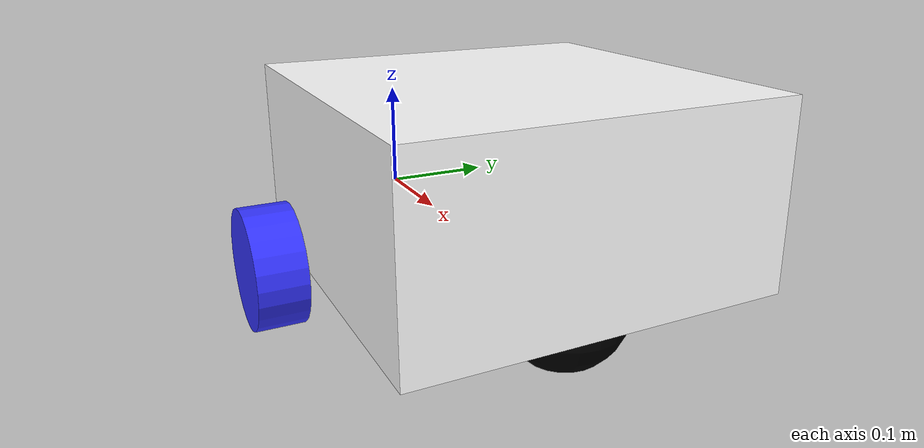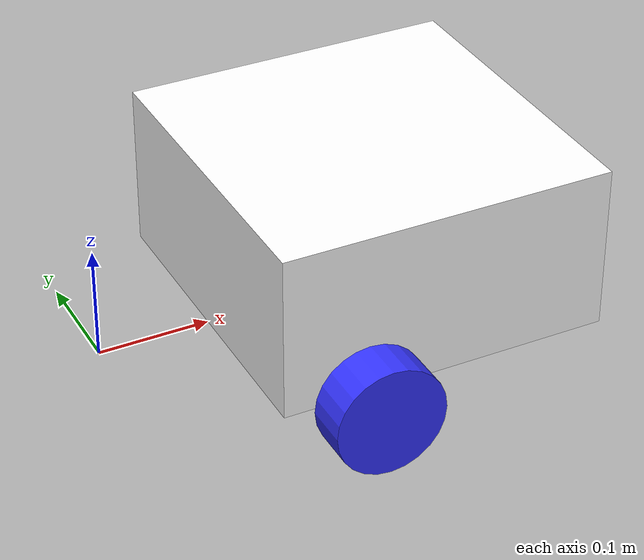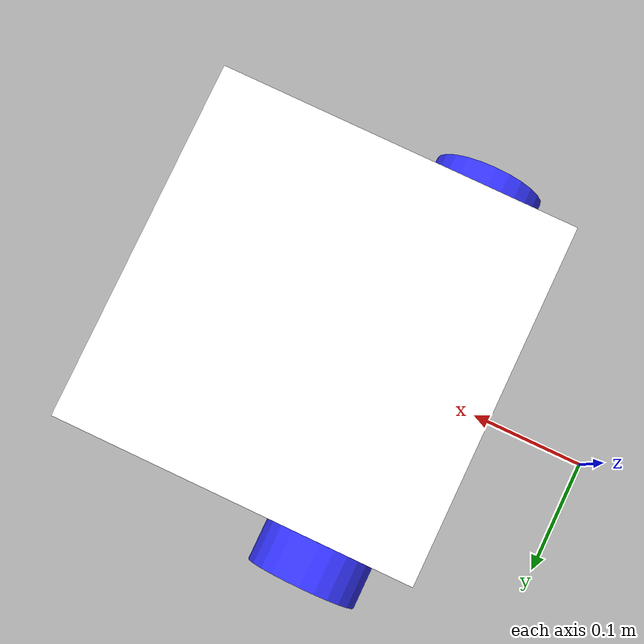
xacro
<?xml version="1.0"?>
<robot xmlns:xacro="http://www.ros.org/wiki/xacro">

    <xacro:include filename="inertial_macros.xacro"/>

    <material name="white">
        <color rgba="1 1 1 1"/>
    </material>

    <material name="orange">
        <color rgba="1 0.3 0.1 1.0"/>
    </material>

    <material name="blue">
        <color rgba="0.2 0.2 1 1.0"/>
    </material>

    <material name="black">
        <color rgba="0 0 0 1"/>
    </material>

    <material name="red">
        <color rgba="1.0 0.0 0.0 1.0"/>
    </material>

    <!-- BASE LINK -->

    <link name="base_link">
    </link>

    <!-- BASE FOOTPRINT LINK -->

    <link name="base_footprint">
    </link>

    <!-- CHASSIS LINK -->

    <link name="chassis_link">
        <visual>
            <geometry>
                <box size="0.3 0.3 0.15"/>
            </geometry>
            <origin xyz="0.15 0.0 0.075" rpy="0.0 0.0 0.0"/>
            <material name="white"/>
        </visual>
        <collision>
            <geometry>
                <box size="0.3 0.3 0.15"/>
            </geometry>
            <origin xyz="0.15 0.0 0.075" rpy="0.0 0.0 0.0"/>
        </collision>
        <xacro:inertial_box mass="0.5" x="0.3" y="0.3" z="0.15" >
            <origin xyz="0.15 0.0 0.075" rpy="0.0 0.0 0.0"/>
        </xacro:inertial_box>
    </link>

    <gazebo reference = "chassis_link">
        <material>Gazebo/White</material>
    </gazebo>

    <!-- LEFT WHEEL LINK -->

    <link name="left_wheel_link">
        <visual>
            <geometry>
                <cylinder radius="0.05" length="0.04"/>
            </geometry>
            <origin xyz="0.0 0.0 0.0" rpy="0.0 0.0 0.0"/>
            <material name="blue"/>
        </visual>
        <collision>
            <geometry>
                <cylinder radius="0.05" length="0.04"/>
            </geometry>
            <origin xyz="0.0 0.0 0.0" rpy="0.0 0.0 0.0"/>
        </collision>
        <xacro:inertial_cylinder mass="0.1" length="0.04" radius="0.05" >
            <origin xyz="0.0 0.0 0.0" rpy="0.0 0.0 0.0"/>
        </xacro:inertial_cylinder>
    </link>

    <gazebo reference = "left_wheel_link">
        <material>Gazebo/Blue</material>
    </gazebo>

    <!-- RIGHT WHEEL LINK -->

    <link name="right_wheel_link">
        <visual>
            <geometry>
                <cylinder radius="0.05" length="0.04"/>
            </geometry>
            <origin xyz="0.0 0.0 0.0" rpy="0.0 0.0 0.0"/>
            <material name="blue"/>
        </visual>
        <collision>
            <geometry>
                <cylinder radius="0.05" length="0.04"/>
            </geometry>
            <origin xyz="0.0 0.0 0.0" rpy="0.0 0.0 0.0"/>
        </collision>
        <xacro:inertial_cylinder mass="0.1" length="0.04" radius="0.05" >
            <origin xyz="0.0 0.0 0.0" rpy="0.0 0.0 0.0"/>
        </xacro:inertial_cylinder>
    </link>

    <gazebo reference = "right_wheel_link">
        <material>Gazebo/Blue</material>
    </gazebo>

    <!-- CASTOR WHEEL LINK -->

    <link name="castor_wheel_link">
        <visual>
            <geometry>
                <sphere radius="0.05"/>
            </geometry>
            <origin xyz="0.1 0.0 0.0" rpy="0.0 0.0 0.0"/>
            <material name = "black" />
        </visual>
        <collision>
            <geometry>
                <sphere radius="0.05"/>
            </geometry>
            <origin xyz="0.1 0.0 0.0" rpy="0.0 0.0 0.0"/>
        </collision>
        <xacro:inertial_sphere mass="0.1" radius="0.05" >
            <origin xyz="0.0 0.0 0.0" rpy="0.0 0.0 0.0"/>
        </xacro:inertial_sphere>
    </link>

    <gazebo reference = "castor_wheel_link">
        <material>Gazebo/Black</material>
        <mu1 value="0.001" />
        <mu2 value="0.001" />
    </gazebo>

    <!-- BASE FOOTPRINT JOINT -->

    <joint name="base_footprint_joint" type="fixed">
        <parent link="base_link"/>
        <child link="base_footprint"/>
        <origin xyz="0.0 0.0 0.0" rpy="0.0 0.0 0.0"/>
    </joint>

    <!-- BASE CHASSIS JOINT -->

    <joint name="base_chassis_joint" type="fixed">
        <parent link="base_link"/>
        <child link="chassis_link"/>
        <origin xyz="0.1 0.0 0.0" rpy="0.0 0.0 0.0"/>
    </joint>

    <!-- LEFT WHEEL JOINT -->

    <joint name="left_wheel_joint" type="continuous">
        <parent link="chassis_link"/>
        <child link="left_wheel_link"/>
        <origin xyz="0.075 0.175 0" rpy="-1.57 0 0"/>
        <axis xyz="0 0 1"/>
    </joint>

    <!-- RIGHT WHEEL JOINT -->

    <joint name="right_wheel_joint" type="continuous">
        <parent link="chassis_link"/>
        <child link="right_wheel_link"/>
        <origin xyz="0.075 -0.175 0" rpy="-1.57 0 0"/>
        <axis xyz="0 0 1"/>
    </joint>

    <!-- CASTOR WHEEL JOINT -->

    <joint name="castor_wheel_base_joint" type="fixed">
        <parent link="base_link"/>
        <child link="castor_wheel_link"/>
        <origin xyz="0.24 0.0 0.0" rpy="0.0 0.0 0.0"/>
    </joint>

</robot>
